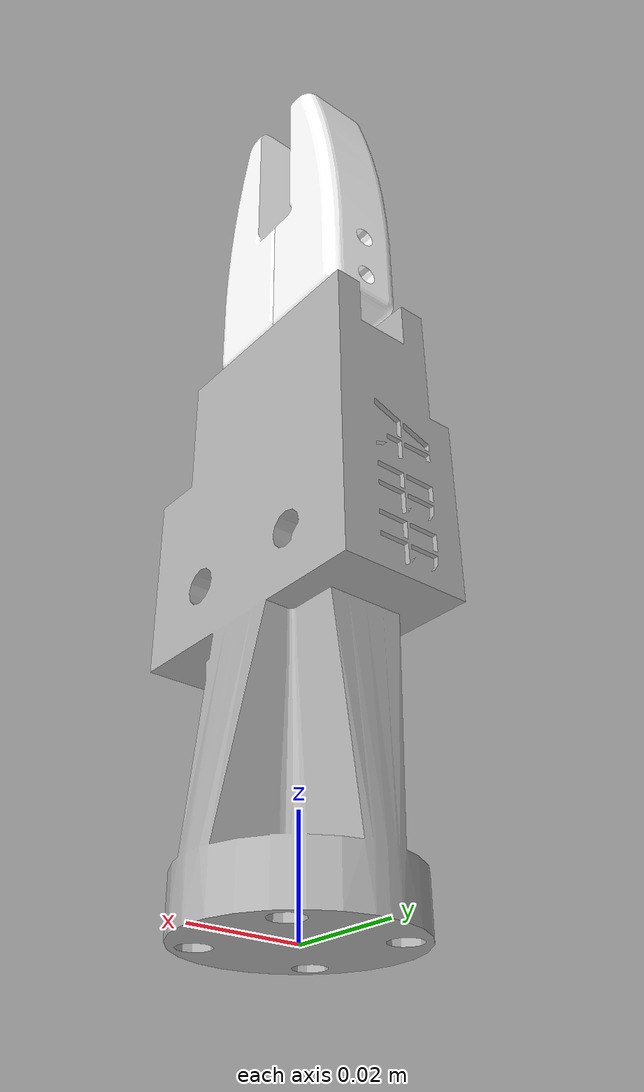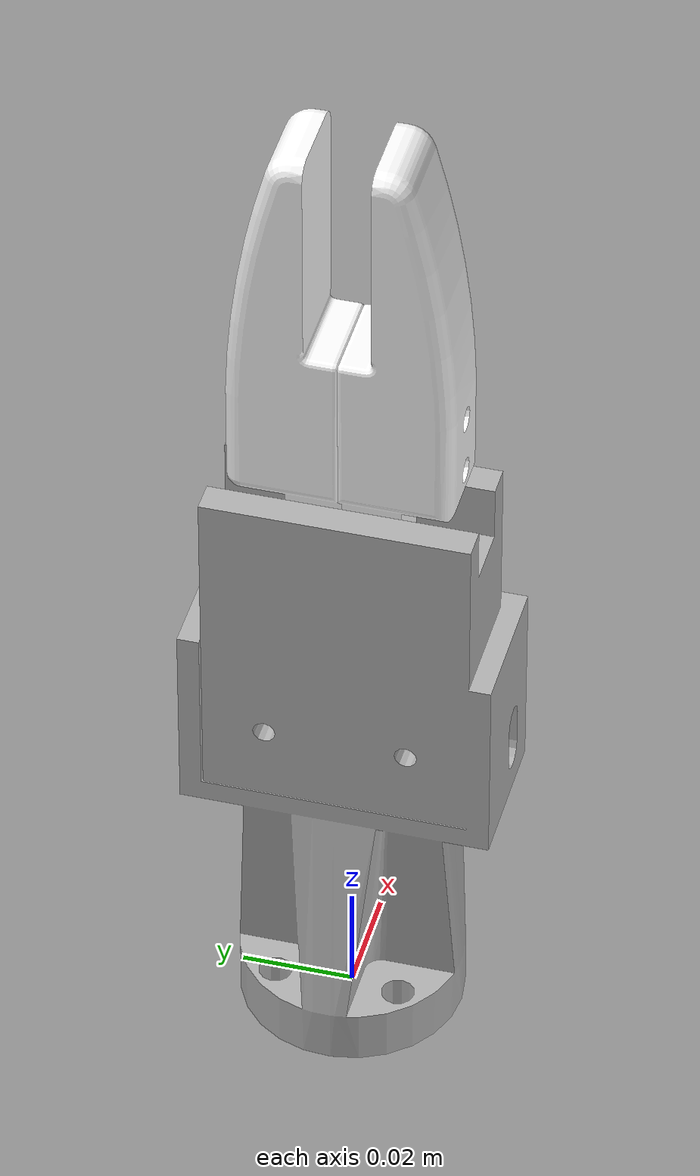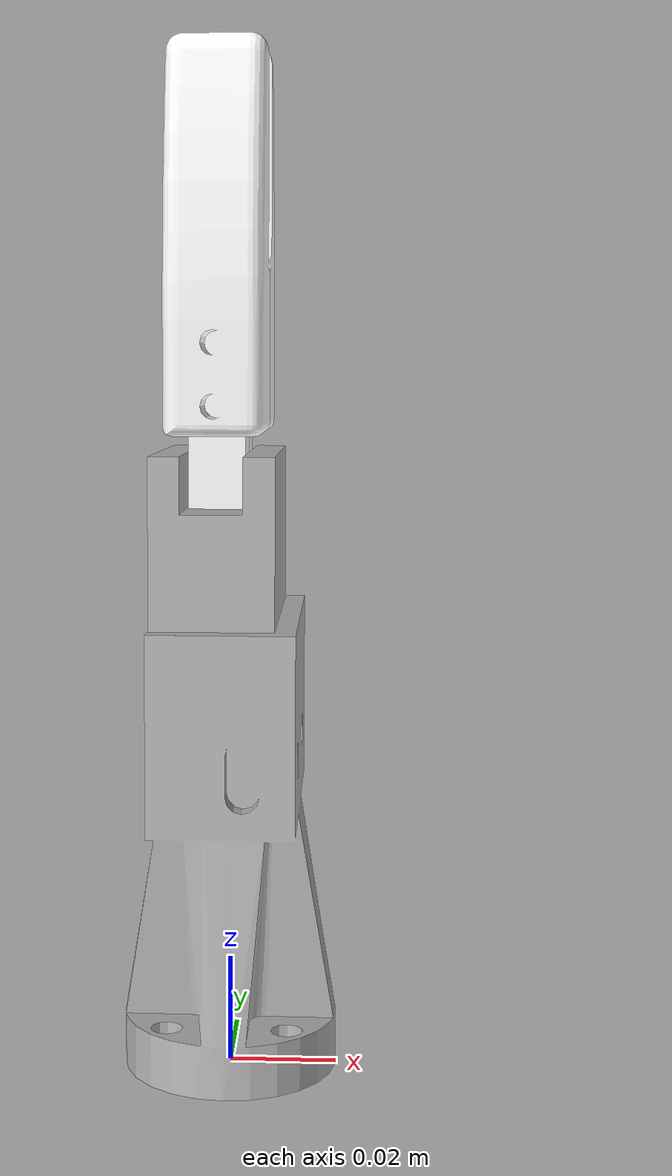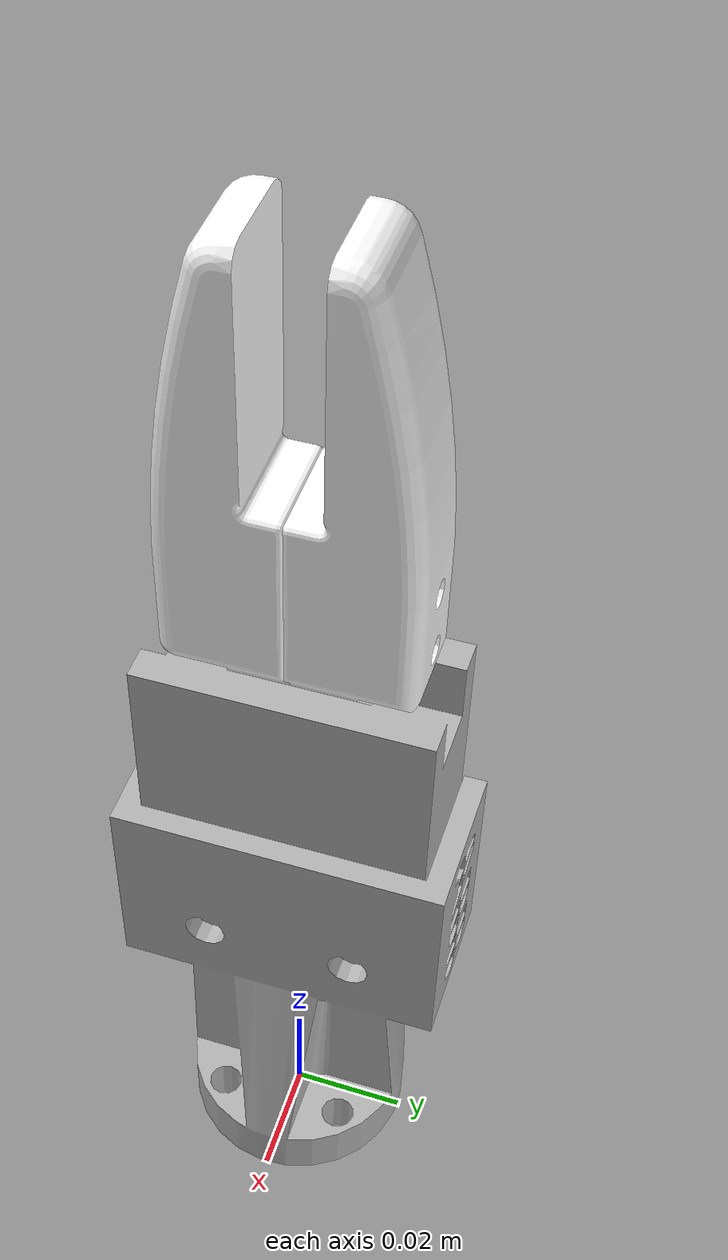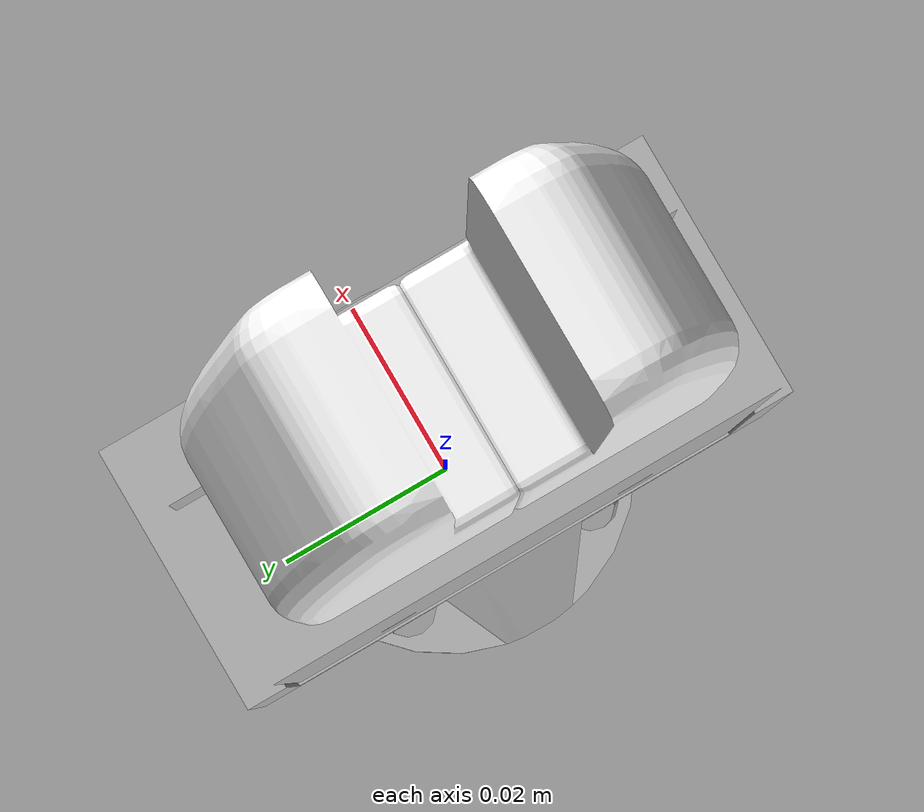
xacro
<?xml version="1.0"?>
<robot name="test_gripper" xmlns:xacro="http://www.ros.org/wiki/xacro">

  <xacro:include filename="$(find abb_gripper_urdf)/urdf/abb_gripper_macro.xacro" />

  <link name="world"/>

  <xacro:abb_gripper
      arm_parent_link="world"
      gripper_prefix="gripper_"
  />

</robot>

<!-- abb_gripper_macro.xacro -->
<robot xmlns:xacro="http://www.ros.org/wiki/xacro">

  <xacro:macro name="abb_gripper" params="arm_parent_link gripper_prefix">

    <!-- ================= LINKS & JOINTS ================= -->

    <!-- Base link of the gripper, attached to the arm's end-effector -->
    <joint name="${gripper_prefix}joint_gripper_base" type="fixed">
      <parent link="${arm_parent_link}"/>
      <child link="${gripper_prefix}base_link"/>
      <!-- Orientation to correctly align the prismatic joints (fingers) -->
      <origin xyz="0 0 0" rpy="1.5708 0 1.5708"/>
    </joint>

    <link name="${gripper_prefix}base_link">
      <inertial>
        <origin xyz="-0.00006 0.0004 0.0601" rpy="0 0 0" />
        <mass value="0.5" />
        <!-- Fixed Inertia Tensor: Explicitly define all six components for URDF parser stability -->
        <inertia ixx="0.001" ixy="0.0" ixz="0.0" iyy="0.001" iyz="0.0" izz="0.001" />
      </inertial>
      <visual>
        <geometry><mesh filename="package://abb_gripper_urdf/meshes/base_link.STL" /></geometry>
        <material name="LightGrey"><color rgba="0.7 0.7 0.7 1.0" /></material>
      </visual>
      <collision>
        <geometry><mesh filename="package://abb_gripper_urdf/meshes/base_link.STL" /></geometry>
      </collision>
    </link>

    <!-- 2. Finger 1 (Master) -->
    <link name="${gripper_prefix}ABB_Gripper_Finger_1">
      <inertial>
        <origin xyz="-0.0014 0.0057 0.0099" rpy="0 0 0" />
        <mass value="0.1" />
        <inertia ixx="0.0001" ixy="0.0" ixz="0.0" iyy="0.0001" iyz="0.0" izz="0.0001" />
      </inertial>
      <visual>
        <geometry><mesh filename="package://abb_gripper_urdf/meshes/ABB_Gripper_Finger_1.STL" /></geometry>
        <material name="White"><color rgba="1 1 1 1" /></material>
      </visual>
      <collision>
        <geometry><mesh filename="package://abb_gripper_urdf/meshes/ABB_Gripper_Finger_1.STL" /></geometry>
      </collision>
    </link>

<joint name="${gripper_prefix}ABB_Gripper_Finger_1_Joint" type="prismatic">
      <parent link="${gripper_prefix}base_link" />
      <child link="${gripper_prefix}ABB_Gripper_Finger_1" />
      <axis xyz="-1 0 0" />
      <dynamics damping="0.5" friction="0.0"/>
      <limit lower="0.0" upper="0.0135" effort="100.0" velocity="1.0"/>
    </joint>

    <link name="${gripper_prefix}ABB_Gripper_Finger_2">
      <inertial>
        <origin xyz="0.0021 0.0057 0.0096" rpy="0 0 0" />
        <mass value="0.1" />
        <inertia ixx="0.0001" ixy="0.0" ixz="0.0" iyy="0.0001" iyz="0.0" izz="0.0001" />
      </inertial>
      <visual>
        <geometry><mesh filename="package://abb_gripper_urdf/meshes/ABB_Gripper_Finger_2.STL" /></geometry>
        <material name="White"><color rgba="1 1 1 1" /></material>
      </visual>
      <collision>
        <geometry><mesh filename="package://abb_gripper_urdf/meshes/ABB_Gripper_Finger_2.STL" /></geometry>
      </collision>
    </link>

    <joint name="${gripper_prefix}ABB_Gripper_Finger_2_Joint" type="prismatic">
      <parent link="${gripper_prefix}base_link" />
      <child link="${gripper_prefix}ABB_Gripper_Finger_2" />
      <axis xyz="1 0 0" />
      <dynamics damping="0.5" friction="0.0"/>
      <limit lower="0.0" upper="0.0135" effort="100.0" velocity="1.0"/>
    </joint>

    <!-- ================= ROS2 CONTROL & GAZEBO PLUGIN CONSOLIDATED ================= -->
    <!-- These blocks have been removed from this file and must be placed
         in the top-level dual_arms Xacro file. -->

  </xacro:macro>
</robot>
